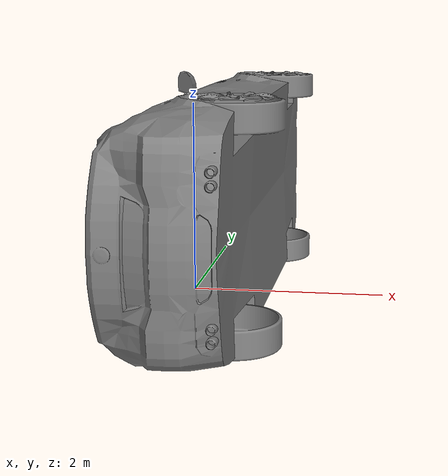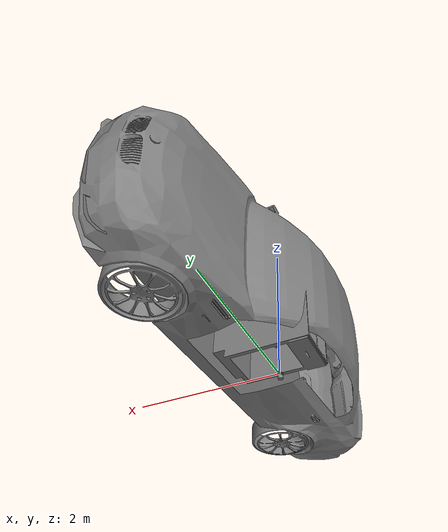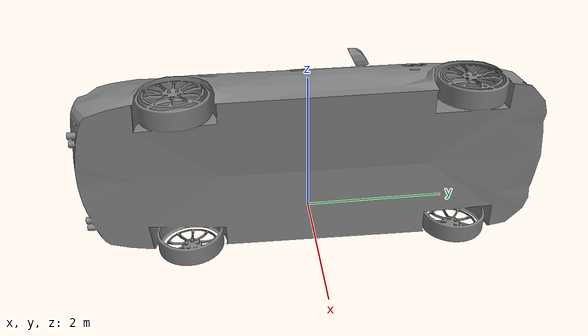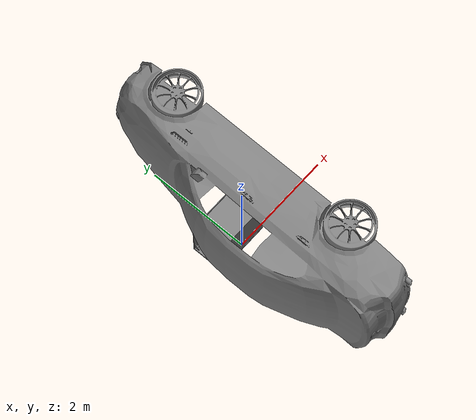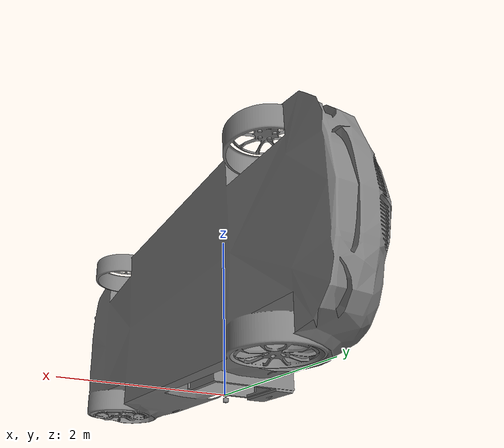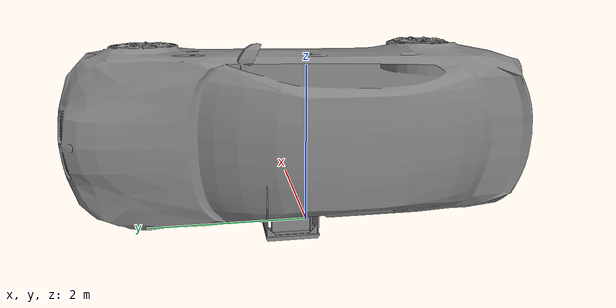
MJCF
<mujoco model="right-pull-door">
  <compiler angle="radian" meshdir="texture_stl/"/>

  <asset>
    <mesh name="frame" file="frame.stl" scale="0.8 0.8 0.8"/>
    <mesh name="board" file="board.stl" scale="0.8 0.8 0.8"/>
    <mesh name="9962004" file="9962004.stl" scale="1.45964 1.45964 1.45964"/>
  </asset>

  <worldbody>
    <geom name="out-frame" pos="0 0 0" quat="0.5 0.5 -0.5 -0.5" type="mesh" contype="0" conaffinity="0" group="1" density="0" mesh="frame"/>
    <geom pos="0 0 0" quat="0.5 0.5 -0.5 -0.5" type="mesh" mesh="frame"/>
    <body name="link_1" pos="0 0.562529 0.334649" quat="0.5 0.5 -0.5 -0.5">
      <joint name="joint_1" pos="0 0 0" axis="0 -1 0" range="0 1.50796"/>
      <geom name="surf-board" pos="0.562529 -0.334649 0" quat="1 0 0 0" type="mesh" contype="0" conaffinity="0" group="1" density="0" mesh="board"/>
      <geom pos="0.562529 -0.334649 0" quat="1 0 0 0" type="mesh" mesh="board"/>
      <body name="link_2" pos="0.562529 -0.334649 0.0133813">
        <joint name="joint_2" pos="0 0 0" axis="0 0 1" range="0 1.50796"/>
        <geom name="handle" type="mesh" contype="0" conaffinity="0" group="1" density="0" mesh="9962004"/>
        <geom type="mesh" mesh="9962004"/>
      </body>
    </body>
  </worldbody>
</mujoco>
